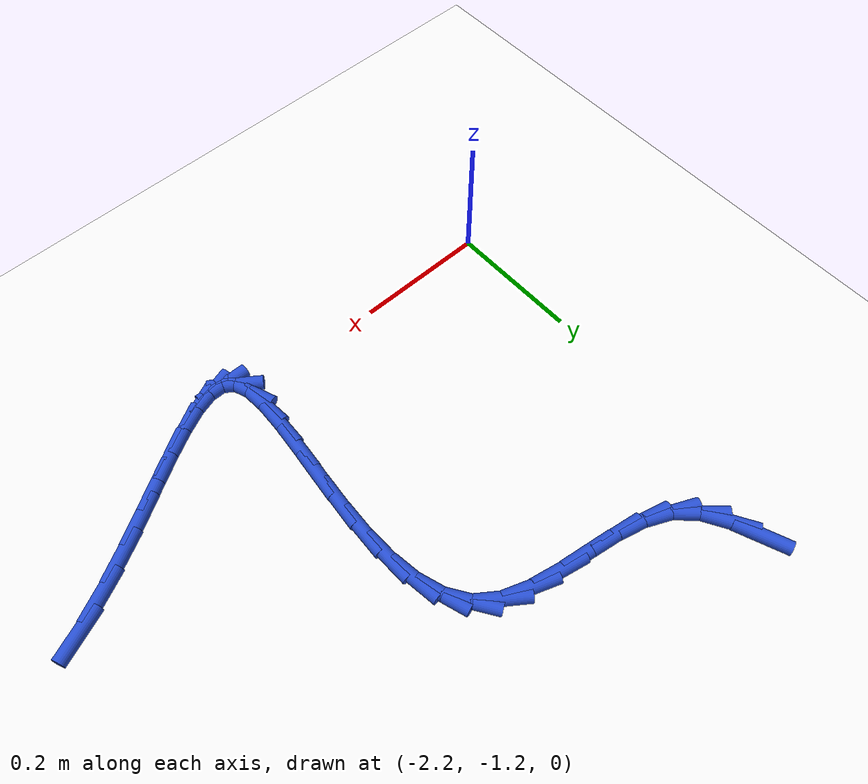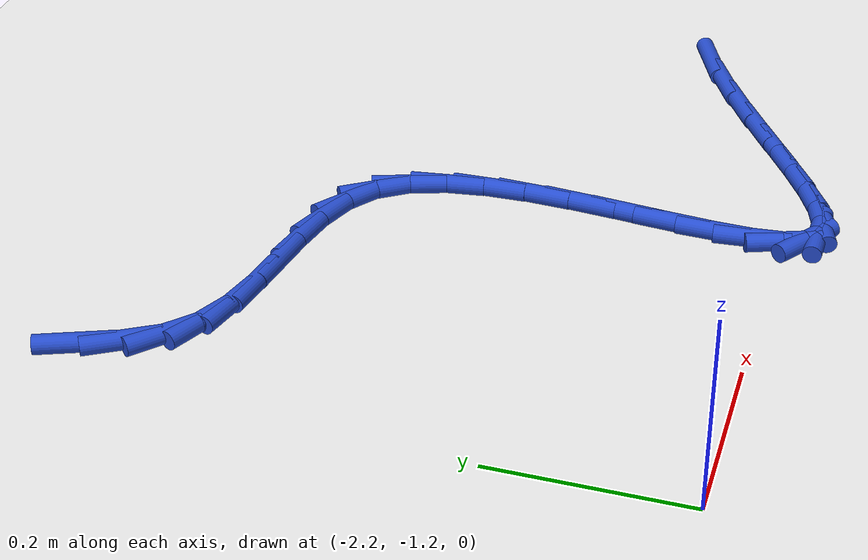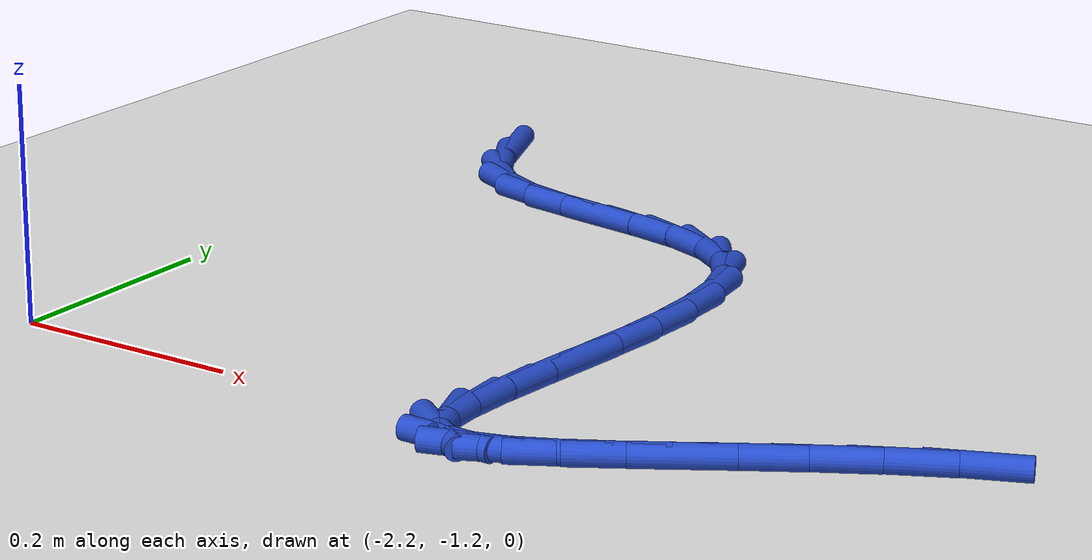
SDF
<sdf version="1.6">
 <world name="default">
  <model name="ground_plane">
   <static>1</static>
   <link name="link">
    <collision name="collision">
     <geometry><plane><normal>0 0 1</normal><size>100 100</size></plane></geometry>
     <surface><friction><ode><mu>100</mu><mu2>50</mu2></ode></friction></surface>
    </collision>
    <visual name="visual">
     <cast_shadows>0</cast_shadows>
     <geometry><plane><normal>0 0 1</normal><size>100 100</size></plane></geometry>
     <material>
      <script><uri>file://media/materials/scripts/gazebo.material</uri><name>Gazebo/WhiteGlow</name></script>
     </material>
    </visual>
   </link>
  </model>
  <model name="line">
   <link name="link_111">
    <pose>-2.1469042542646615 -0.5857348606707171 0.01 0 1.57 -1.1951092320197347</pose>
    <collision name="collision">
     <geometry><cylinder><radius>0.01</radius><length>0.08</length></cylinder></geometry>
    </collision>
    <visual name="visual">
     <material>
      <script><name>Gazebo/Blue</name><uri>file://media/materials/scripts/gazebo.material</uri></script>
     </material>
     <geometry><cylinder><radius>0.01</radius><length>0.08</length></cylinder></geometry>
    </visual>
   </link>
   <link name="link_112">
    <pose>-2.1307747523518046 -0.6266290541536468 0.01 0 1.57 -1.0416119466774458</pose>
    <collision name="collision">
     <geometry><cylinder><radius>0.01</radius><length>0.08</length></cylinder></geometry>
    </collision>
    <visual name="visual">
     <material>
      <script><name>Gazebo/Blue</name><uri>file://media/materials/scripts/gazebo.material</uri></script>
     </material>
     <geometry><cylinder><radius>0.01</radius><length>0.08</length></cylinder></geometry>
    </visual>
   </link>
   <link name="link_113">
    <pose>-2.1108184153518836 -0.660752838684243 0.01 0 1.57 -0.7464924688753528</pose>
    <collision name="collision">
     <geometry><cylinder><radius>0.01</radius><length>0.08</length></cylinder></geometry>
    </collision>
    <visual name="visual">
     <material>
      <script><name>Gazebo/Blue</name><uri>file://media/materials/scripts/gazebo.material</uri></script>
     </material>
     <geometry><cylinder><radius>0.01</radius><length>0.08</length></cylinder></geometry>
    </visual>
   </link>
   <link name="link_114">
    <pose>-2.083427140870585 -0.6860915795825998 0.01 0 1.57 -0.43785863376013445</pose>
    <collision name="collision">
     <geometry><cylinder><radius>0.01</radius><length>0.08</length></cylinder></geometry>
    </collision>
    <visual name="visual">
     <material>
      <script><name>Gazebo/Blue</name><uri>file://media/materials/scripts/gazebo.material</uri></script>
     </material>
     <geometry><cylinder><radius>0.01</radius><length>0.08</length></cylinder></geometry>
    </visual>
   </link>
   <link name="link_115">
    <pose>-2.0478043725916817 -0.7027689909563648 0.01 0 1.57 -0.2515549056661416</pose>
    <collision name="collision">
     <geometry><cylinder><radius>0.01</radius><length>0.08</length></cylinder></geometry>
    </collision>
    <visual name="visual">
     <material>
      <script><name>Gazebo/Blue</name><uri>file://media/materials/scripts/gazebo.material</uri></script>
     </material>
     <geometry><cylinder><radius>0.01</radius><length>0.08</length></cylinder></geometry>
    </visual>
   </link>
   <link name="link_116">
    <pose>-2.0064314132257532 -0.713401794561313 0.01 0 1.57 -0.1637526732621022</pose>
    <collision name="collision">
     <geometry><cylinder><radius>0.01</radius><length>0.08</length></cylinder></geometry>
    </collision>
    <visual name="visual">
     <material>
      <script><name>Gazebo/Blue</name><uri>file://media/materials/scripts/gazebo.material</uri></script>
     </material>
     <geometry><cylinder><radius>0.01</radius><length>0.08</length></cylinder></geometry>
    </visual>
   </link>
   <link name="link_117">
    <pose>-1.961974654473999 -0.7207474833900026 0.01 0 1.57 -0.15074067350325476</pose>
    <collision name="collision">
     <geometry><cylinder><radius>0.01</radius><length>0.08</length></cylinder></geometry>
    </collision>
    <visual name="visual">
     <material>
      <script><name>Gazebo/Blue</name><uri>file://media/materials/scripts/gazebo.material</uri></script>
     </material>
     <geometry><cylinder><radius>0.01</radius><length>0.08</length></cylinder></geometry>
    </visual>
   </link>
   <link name="link_118">
    <pose>-1.9171004880376206 -0.7275635504349909 0.01 0 1.57 -0.20907307104890827</pose>
    <collision name="collision">
     <geometry><cylinder><radius>0.01</radius><length>0.08</length></cylinder></geometry>
    </collision>
    <visual name="visual">
     <material>
      <script><name>Gazebo/Blue</name><uri>file://media/materials/scripts/gazebo.material</uri></script>
     </material>
     <geometry><cylinder><radius>0.01</radius><length>0.08</length></cylinder></geometry>
    </visual>
   </link>
   <link name="link_119">
    <pose>-1.8744753056178152 -0.7366074886888361 0.01 0 1.57 -0.3561671623552584</pose>
    <collision name="collision">
     <geometry><cylinder><radius>0.01</radius><length>0.08</length></cylinder></geometry>
    </collision>
    <visual name="visual">
     <material>
      <script><name>Gazebo/Blue</name><uri>file://media/materials/scripts/gazebo.material</uri></script>
     </material>
     <geometry><cylinder><radius>0.01</radius><length>0.08</length></cylinder></geometry>
    </visual>
   </link>
   <link name="link_120">
    <pose>-1.8367654989157842 -0.7506367911440956 0.01 0 1.57 -0.6257133788365183</pose>
    <collision name="collision">
     <geometry><cylinder><radius>0.01</radius><length>0.08</length></cylinder></geometry>
    </collision>
    <visual name="visual">
     <material>
      <script><name>Gazebo/Blue</name><uri>file://media/materials/scripts/gazebo.material</uri></script>
     </material>
     <geometry><cylinder><radius>0.01</radius><length>0.08</length></cylinder></geometry>
    </visual>
   </link>
   <link name="link_121">
    <pose>-1.8066360791549225 -0.7724073975647074 0.01 0 1.57 -0.9803673117236043</pose>
    <collision name="collision">
     <geometry><cylinder><radius>0.01</radius><length>0.08</length></cylinder></geometry>
    </collision>
    <visual name="visual">
     <material>
      <script><name>Gazebo/Blue</name><uri>file://media/materials/scripts/gazebo.material</uri></script>
     </material>
     <geometry><cylinder><radius>0.01</radius><length>0.08</length></cylinder></geometry>
    </visual>
   </link>
   <link name="link_122">
    <pose>-1.7857594047151757 -0.8035583758599097 0.01 0 1.57 -1.2568578828070678</pose>
    <collision name="collision">
     <geometry><cylinder><radius>0.01</radius><length>0.08</length></cylinder></geometry>
    </collision>
    <visual name="visual">
     <material>
      <script><name>Gazebo/Blue</name><uri>file://media/materials/scripts/gazebo.material</uri></script>
     </material>
     <geometry><cylinder><radius>0.01</radius><length>0.08</length></cylinder></geometry>
    </visual>
   </link>
   <link name="link_123">
    <pose>-1.7730684209676295 -0.8426465751066703 0.01 0 1.57 -1.4375131363430604</pose>
    <collision name="collision">
     <geometry><cylinder><radius>0.01</radius><length>0.08</length></cylinder></geometry>
    </collision>
    <visual name="visual">
     <material>
      <script><name>Gazebo/Blue</name><uri>file://media/materials/scripts/gazebo.material</uri></script>
     </material>
     <geometry><cylinder><radius>0.01</radius><length>0.08</length></cylinder></geometry>
    </visual>
   </link>
   <link name="link_124">
    <pose>-1.7670275221410678 -0.8877016594886887 0.01 0 1.57 -1.5519119497052072</pose>
    <collision name="collision">
     <geometry><cylinder><radius>0.01</radius><length>0.08</length></cylinder></geometry>
    </collision>
    <visual name="visual">
     <material>
      <script><name>Gazebo/Blue</name><uri>file://media/materials/scripts/gazebo.material</uri></script>
     </material>
     <geometry><cylinder><radius>0.01</radius><length>0.08</length></cylinder></geometry>
    </visual>
   </link>
   <link name="link_125">
    <pose>-1.7661011024642732 -0.9367532931896632 0.01 0 1.57 1.5189133008149098</pose>
    <collision name="collision">
     <geometry><cylinder><radius>0.01</radius><length>0.08</length></cylinder></geometry>
    </collision>
    <visual name="visual">
     <material>
      <script><name>Gazebo/Blue</name><uri>file://media/materials/scripts/gazebo.material</uri></script>
     </material>
     <geometry><cylinder><radius>0.01</radius><length>0.08</length></cylinder></geometry>
    </visual>
   </link>
   <link name="link_126">
    <pose>-1.7687535561660284 -0.9878311403932954 0.01 0 1.57 1.47922099556435</pose>
    <collision name="collision">
     <geometry><cylinder><radius>0.01</radius><length>0.08</length></cylinder></geometry>
    </collision>
    <visual name="visual">
     <material>
      <script><name>Gazebo/Blue</name><uri>file://media/materials/scripts/gazebo.material</uri></script>
     </material>
     <geometry><cylinder><radius>0.01</radius><length>0.08</length></cylinder></geometry>
    </visual>
   </link>
   <link name="link_127">
    <pose>-1.7734492774751154 -1.038964865283283 0.01 0 1.57 1.4654691359060243</pose>
    <collision name="collision">
     <geometry><cylinder><radius>0.01</radius><length>0.08</length></cylinder></geometry>
    </collision>
    <visual name="visual">
     <material>
      <script><name>Gazebo/Blue</name><uri>file://media/materials/scripts/gazebo.material</uri></script>
     </material>
     <geometry><cylinder><radius>0.01</radius><length>0.08</length></cylinder></geometry>
    </visual>
   </link>
   <link name="link_128">
    <pose>-1.7786526606203177 -1.088184132043326 0.01 0 1.57 1.4789524826977154</pose>
    <collision name="collision">
     <geometry><cylinder><radius>0.01</radius><length>0.08</length></cylinder></geometry>
    </collision>
    <visual name="visual">
     <material>
      <script><name>Gazebo/Blue</name><uri>file://media/materials/scripts/gazebo.material</uri></script>
     </material>
     <geometry><cylinder><radius>0.01</radius><length>0.08</length></cylinder></geometry>
    </visual>
   </link>
   <link name="link_129">
    <pose>-1.782828099830418 -1.133518604857123 0.01 0 1.57 1.5299903100054655</pose>
    <collision name="collision">
     <geometry><cylinder><radius>0.01</radius><length>0.08</length></cylinder></geometry>
    </collision>
    <visual name="visual">
     <material>
      <script><name>Gazebo/Blue</name><uri>file://media/materials/scripts/gazebo.material</uri></script>
     </material>
     <geometry><cylinder><radius>0.01</radius><length>0.08</length></cylinder></geometry>
    </visual>
   </link>
   <link name="link_130">
    <pose>-1.7844399893341987 -1.1729979479083739 0.01 0 1.57 -1.492380474563237</pose>
    <collision name="collision">
     <geometry><cylinder><radius>0.01</radius><length>0.08</length></cylinder></geometry>
    </collision>
    <visual name="visual">
     <material>
      <script><name>Gazebo/Blue</name><uri>file://media/materials/scripts/gazebo.material</uri></script>
     </material>
     <geometry><cylinder><radius>0.01</radius><length>0.08</length></cylinder></geometry>
    </visual>
   </link>
   <link name="link_131">
    <pose>-1.7819527233604433 -1.2046518253807785 0.01 0 1.57 -1.2150272455611233</pose>
    <collision name="collision">
     <geometry><cylinder><radius>0.01</radius><length>0.08</length></cylinder></geometry>
    </collision>
    <visual name="visual">
     <material>
      <script><name>Gazebo/Blue</name><uri>file://media/materials/scripts/gazebo.material</uri></script>
     </material>
     <geometry><cylinder><radius>0.01</radius><length>0.08</length></cylinder></geometry>
    </visual>
   </link>
   <link name="link_132">
    <pose>-1.7738306961379335 -1.226509901458034 0.01 0 1.57 -0.6199469606937694</pose>
    <collision name="collision">
     <geometry><cylinder><radius>0.01</radius><length>0.08</length></cylinder></geometry>
    </collision>
    <visual name="visual">
     <material>
      <script><name>Gazebo/Blue</name><uri>file://media/materials/scripts/gazebo.material</uri></script>
     </material>
     <geometry><cylinder><radius>0.01</radius><length>0.08</length></cylinder></geometry>
    </visual>
   </link>
   <link name="link_133">
    <pose>-1.7588967492994194 -1.2371701848706658 0.01 0 1.57 -0.020410655604803374</pose>
    <collision name="collision">
     <geometry><cylinder><radius>0.01</radius><length>0.08</length></cylinder></geometry>
    </collision>
    <visual name="visual">
     <material>
      <script><name>Gazebo/Blue</name><uri>file://media/materials/scripts/gazebo.material</uri></script>
     </material>
     <geometry><cylinder><radius>0.01</radius><length>0.08</length></cylinder></geometry>
    </visual>
   </link>
   <link name="link_134">
    <pose>-1.7374727653441178 -1.2376075231615087 0.01 0 1.57 0.29244876651502977</pose>
    <collision name="collision">
     <geometry><cylinder><radius>0.01</radius><length>0.08</length></cylinder></geometry>
    </collision>
    <visual name="visual">
     <material>
      <script><name>Gazebo/Blue</name><uri>file://media/materials/scripts/gazebo.material</uri></script>
     </material>
     <geometry><cylinder><radius>0.01</radius><length>0.08</length></cylinder></geometry>
    </visual>
   </link>
   <link name="link_135">
    <pose>-1.7102724353926584 -1.2294180050678238 0.01 0 1.57 0.44079890039965397</pose>
    <collision name="collision">
     <geometry><cylinder><radius>0.01</radius><length>0.08</length></cylinder></geometry>
    </collision>
    <visual name="visual">
     <material>
      <script><name>Gazebo/Blue</name><uri>file://media/materials/scripts/gazebo.material</uri></script>
     </material>
     <geometry><cylinder><radius>0.01</radius><length>0.08</length></cylinder></geometry>
    </visual>
   </link>
   <link name="link_136">
    <pose>-1.6780094517890922 -1.2141977212666957 0.01 0 1.57 0.5136488286324294</pose>
    <collision name="collision">
     <geometry><cylinder><radius>0.01</radius><length>0.08</length></cylinder></geometry>
    </collision>
    <visual name="visual">
     <material>
      <script><name>Gazebo/Blue</name><uri>file://media/materials/scripts/gazebo.material</uri></script>
     </material>
     <geometry><cylinder><radius>0.01</radius><length>0.08</length></cylinder></geometry>
    </visual>
   </link>
   <link name="link_137">
    <pose>-1.6413975068774704 -1.1935427624352084 0.01 0 1.57 0.5467025241658168</pose>
    <collision name="collision">
     <geometry><cylinder><radius>0.01</radius><length>0.08</length></cylinder></geometry>
    </collision>
    <visual name="visual">
     <material>
      <script><name>Gazebo/Blue</name><uri>file://media/materials/scripts/gazebo.material</uri></script>
     </material>
     <geometry><cylinder><radius>0.01</radius><length>0.08</length></cylinder></geometry>
    </visual>
   </link>
   <link name="link_138">
    <pose>-1.6011502930018449 -1.1690492192504467 0.01 0 1.57 0.5545168055835371</pose>
    <collision name="collision">
     <geometry><cylinder><radius>0.01</radius><length>0.08</length></cylinder></geometry>
    </collision>
    <visual name="visual">
     <material>
      <script><name>Gazebo/Blue</name><uri>file://media/materials/scripts/gazebo.material</uri></script>
     </material>
     <geometry><cylinder><radius>0.01</radius><length>0.08</length></cylinder></geometry>
    </visual>
   </link>
   <link name="link_139">
    <pose>-1.5579815025062667 -1.1423131823894952 0.01 0 1.57 0.5429505540855958</pose>
    <collision name="collision">
     <geometry><cylinder><radius>0.01</radius><length>0.08</length></cylinder></geometry>
    </collision>
    <visual name="visual">
     <material>
      <script><name>Gazebo/Blue</name><uri>file://media/materials/scripts/gazebo.material</uri></script>
     </material>
     <geometry><cylinder><radius>0.01</radius><length>0.08</length></cylinder></geometry>
    </visual>
   </link>
   <link name="link_140">
    <pose>-1.5126048277347857 -1.1149307425294372 0.01 0 1.57 0.5134890783061142</pose>
    <collision name="collision">
     <geometry><cylinder><radius>0.01</radius><length>0.08</length></cylinder></geometry>
    </collision>
    <visual name="visual">
     <material>
      <script><name>Gazebo/Blue</name><uri>file://media/materials/scripts/gazebo.material</uri></script>
     </material>
     <geometry><cylinder><radius>0.01</radius><length>0.08</length></cylinder></geometry>
    </visual>
   </link>
   <link name="link_141">
    <pose>-1.4657339610314541 -1.088497990347358 0.01 0 1.57 0.46467606458959204</pose>
    <collision name="collision">
     <geometry><cylinder><radius>0.01</radius><length>0.08</length></cylinder></geometry>
    </collision>
    <visual name="visual">
     <material>
      <script><name>Gazebo/Blue</name><uri>file://media/materials/scripts/gazebo.material</uri></script>
     </material>
     <geometry><cylinder><radius>0.01</radius><length>0.08</length></cylinder></geometry>
    </visual>
   </link>
   <link name="link_142">
    <pose>-1.4180825947403226 -1.0646110165203415 0.01 0 1.57 0.3923339475448281</pose>
    <collision name="collision">
     <geometry><cylinder><radius>0.01</radius><length>0.08</length></cylinder></geometry>
    </collision>
    <visual name="visual">
     <material>
      <script><name>Gazebo/Blue</name><uri>file://media/materials/scripts/gazebo.material</uri></script>
     </material>
     <geometry><cylinder><radius>0.01</radius><length>0.08</length></cylinder></geometry>
    </visual>
   </link>
  </model>
 </world>
</sdf>
